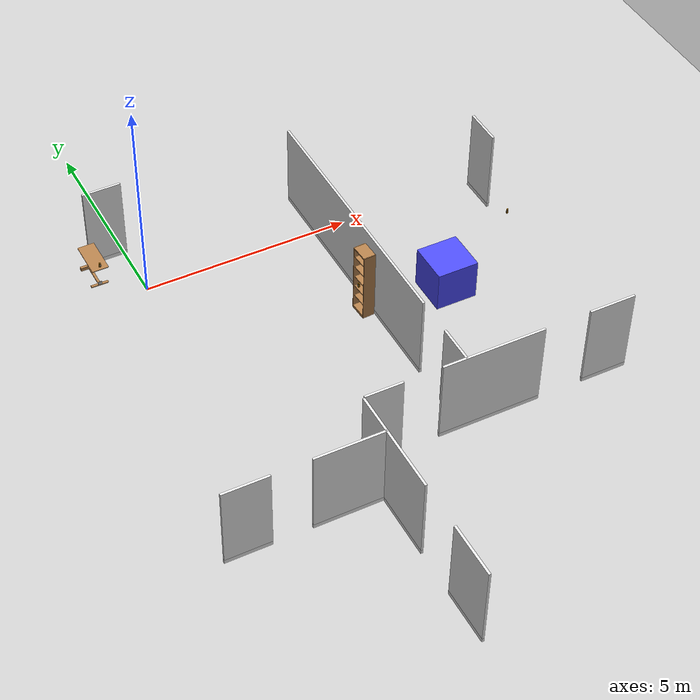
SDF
<sdf version="1.6">
 <world name="default">
  <model name="ground_plane">
   <static>1</static>
   <link name="link">
    <collision name="collision">
     <geometry><plane><normal>0 0 1</normal><size>100 100</size></plane></geometry>
     <surface><friction><ode><mu>100</mu><mu2>50</mu2></ode></friction></surface>
    </collision>
    <visual name="visual">
     <cast_shadows>0</cast_shadows>
     <geometry><plane><normal>0 0 1</normal><size>100 100</size></plane></geometry>
     <material>
      <script><uri>file://media/materials/scripts/gazebo.material</uri><name>Gazebo/Grey</name></script>
     </material>
    </visual>
   </link>
  </model>
  <model name="full_inside_wall">
   <link name="link">
    <inertial>
     <mass>50</mass>
     <inertia><ixx>1</ixx><ixy>0</ixy><ixz>0</ixz><iyy>1</iyy><iyz>0</iyz><izz>1</izz></inertia>
    </inertial>
    <visual name="x05y01_08_bottom_frame">
     <pose>4.075 3.215 0.05 0 -0 0</pose>
     <geometry><box><size>0.055 6.43 0.1</size></box></geometry>
     <material>
      <script><uri>model://base_materials/color/scripts</uri><name>hsr_color/white</name></script>
     </material>
    </visual>
    <collision name="x05y01_08_collision_bottom_frame">
     <pose>4.075 3.215 0.05 0 -0 0</pose>
     <geometry><box><size>0.055 6.43 0.1</size></box></geometry>
    </collision>
    <visual name="x05y01_08_wall">
     <pose>4.075 3.215 1.095 0 -0 0</pose>
     <geometry><box><size>0.055 6.43 1.99</size></box></geometry>
     <material>
      <script>
       <uri>model://base_materials/wall/scripts</uri>
       <uri>model://base_materials/wall/textures</uri>
       <name>wall/white_noise</name>
      </script>
     </material>
    </visual>
    <collision name="x05y01_08_collision_wall">
     <pose>4.075 3.215 1.095 0 -0 0</pose>
     <geometry><box><size>0.055 6.43 1.99</size></box></geometry>
    </collision>
    <visual name="x05y10_bottom_frame">
     <pose>4.075 7.78 0.05 0 -0 0</pose>
     <geometry><box><size>0.055 0.9 0.1</size></box></geometry>
     <material>
      <script><uri>model://base_materials/color/scripts</uri><name>hsr_color/white</name></script>
     </material>
    </visual>
    <collision name="x05y10_collision_bottom_frame">
     <pose>4.075 7.78 0.05 0 -0 0</pose>
     <geometry><box><size>0.055 0.9 0.1</size></box></geometry>
    </collision>
    <visual name="x05y10_wall">
     <pose>4.075 7.78 1.095 0 -0 0</pose>
     <geometry><box><size>0.055 0.9 1.99</size></box></geometry>
     <material>
      <script>
       <uri>model://base_materials/wall/scripts</uri>
       <uri>model://base_materials/wall/textures</uri>
       <name>wall/white_noise</name>
      </script>
     </material>
    </visual>
    <collision name="x05y10_collision_wall">
     <pose>4.075 7.78 1.095 0 -0 0</pose>
     <geometry><box><size>0.055 0.9 1.99</size></box></geometry>
    </collision>
    <visual name="x01_02_y09_bottom_frame">
     <pose>0.55 8.23 0.05 0 -0 1.5708</pose>
     <geometry><box><size>0.055 1.1 0.1</size></box></geometry>
     <material>
      <script><uri>model://base_materials/color/scripts</uri><name>hsr_color/white</name></script>
     </material>
    </visual>
    <collision name="x01_02_y09_collision_bottom_frame">
     <pose>0.55 8.23 0.05 0 -0 1.5708</pose>
     <geometry><box><size>0.055 1.1 0.1</size></box></geometry>
    </collision>
    <visual name="x01_02_y09_wall">
     <pose>0.55 8.23 1.095 0 -0 1.5708</pose>
     <geometry><box><size>0.055 1.1 1.99</size></box></geometry>
     <material>
      <script>
       <uri>model://base_materials/wall/scripts</uri>
       <uri>model://base_materials/wall/textures</uri>
       <name>wall/white_noise</name>
      </script>
     </material>
    </visual>
    <collision name="x01_02_y09_collision_wall">
     <pose>0.55 8.23 1.095 0 -0 1.5708</pose>
     <geometry><box><size>0.055 1.1 1.99</size></box></geometry>
    </collision>
    <visual name="x04_07_y09_bottom_frame">
     <pose>3.42 8.23 0.05 0 -0 1.5708</pose>
     <geometry><box><size>0.055 2.44 0.1</size></box></geometry>
     <material>
      <script><uri>model://base_materials/color/scripts</uri><name>hsr_color/white</name></script>
     </material>
    </visual>
    <collision name="x04_07_y09_collision_bottom_frame">
     <pose>3.42 8.23 0.05 0 -0 1.5708</pose>
     <geometry><box><size>0.055 2.44 0.1</size></box></geometry>
    </collision>
    <visual name="x04_07_y09_wall">
     <pose>3.42 8.23 1.095 0 -0 1.5708</pose>
     <geometry><box><size>0.055 2.44 1.99</size></box></geometry>
     <material>
      <script>
       <uri>model://base_materials/wall/scripts</uri>
       <uri>model://base_materials/wall/textures</uri>
       <name>wall/white_noise</name>
      </script>
     </material>
    </visual>
    <collision name="x04_07_y09_collision_wall">
     <pose>3.42 8.23 1.095 0 -0 1.5708</pose>
     <geometry><box><size>0.055 2.44 1.99</size></box></geometry>
    </collision>
    <visual name="x08y10a_bottom_frame">
     <pose>5.9925 8.23 0.05 0 -0 1.5708</pose>
     <geometry><box><size>0.055 0.9 0.1</size></box></geometry>
     <material>
      <script><uri>model://base_materials/color/scripts</uri><name>hsr_color/white</name></script>
     </material>
    </visual>
    <collision name="x08y10a_collision_bottom_frame">
     <pose>5.9925 8.23 0.05 0 -0 1.5708</pose>
     <geometry><box><size>0.055 0.9 0.1</size></box></geometry>
    </collision>
    <visual name="x08y10a_wall">
     <pose>5.9925 8.23 1.095 0 -0 1.5708</pose>
     <geometry><box><size>0.055 0.9 1.99</size></box></geometry>
     <material>
      <script>
       <uri>model://base_materials/wall/scripts</uri>
       <uri>model://base_materials/wall/textures</uri>
       <name>wall/white_noise</name>
      </script>
     </material>
    </visual>
    <collision name="x08y10a_collision_wall">
     <pose>5.9925 8.23 1.095 0 -0 1.5708</pose>
     <geometry><box><size>0.055 0.9 1.99</size></box></geometry>
    </collision>
    <visual name="x08y10a_bottom_frame">
     <pose>5.9925 8.23 0.05 0 -0 1.5708</pose>
     <geometry><box><size>0.055 0.9 0.1</size></box></geometry>
     <material>
      <script><uri>model://base_materials/color/scripts</uri><name>hsr_color/white</name></script>
     </material>
    </visual>
    <collision name="x08y10a_collision_bottom_frame">
     <pose>5.9925 8.23 0.05 0 -0 1.5708</pose>
     <geometry><box><size>0.055 0.9 0.1</size></box></geometry>
    </collision>
    <visual name="x08y10a_wall">
     <pose>5.9925 8.23 1.095 0 -0 1.5708</pose>
     <geometry><box><size>0.055 0.9 1.99</size></box></geometry>
     <material>
      <script>
       <uri>model://base_materials/wall/scripts</uri>
       <uri>model://base_materials/wall/textures</uri>
       <name>wall/white_noise</name>
      </script>
     </material>
    </visual>
    <collision name="x08y10a_collision_wall">
     <pose>5.9925 8.23 1.095 0 -0 1.5708</pose>
     <geometry><box><size>0.055 0.9 1.99</size></box></geometry>
    </collision>
    <visual name="x08y14_15_bottom_frame">
     <pose>6.47 12.54 0.05 0 -0 0</pose>
     <geometry><box><size>0.055 1.28 0.1</size></box></geometry>
     <material>
      <script><uri>model://base_materials/color/scripts</uri><name>hsr_color/white</name></script>
     </material>
    </visual>
    <collision name="x08y14_15_collision_bottom_frame">
     <pose>6.47 12.54 0.05 0 -0 0</pose>
     <geometry><box><size>0.055 1.28 0.1</size></box></geometry>
    </collision>
    <visual name="x08y14_15_wall">
     <pose>6.47 12.54 1.095 0 -0 0</pose>
     <geometry><box><size>0.055 1.28 1.99</size></box></geometry>
     <material>
      <script>
       <uri>model://base_materials/wall/scripts</uri>
       <uri>model://base_materials/wall/textures</uri>
       <name>wall/white_noise</name>
      </script>
     </material>
    </visual>
    <collision name="x08y14_15_collision_wall">
     <pose>6.47 12.54 1.095 0 -0 0</pose>
     <geometry><box><size>0.055 1.28 1.99</size></box></geometry>
    </collision>
    <visual name="x08y10b_12_bottom_frame">
     <pose>6.47 9.52875 0.05 0 -0 0</pose>
     <geometry><box><size>0.055 2.5425 0.1</size></box></geometry>
     <material>
      <script><uri>model://base_materials/color/scripts</uri><name>hsr_color/white</name></script>
     </material>
    </visual>
    <collision name="x08y10b_12_collision_bottom_frame">
     <pose>6.47 9.52875 0.05 0 -0 0</pose>
     <geometry><box><size>0.055 2.5425 0.1</size></box></geometry>
    </collision>
    <visual name="x08y10b_12_wall">
     <pose>6.47 9.52875 1.095 0 -0 0</pose>
     <geometry><box><size>0.055 2.5425 1.99</size></box></geometry>
     <material>
      <script>
       <uri>model://base_materials/wall/scripts</uri>
       <uri>model://base_materials/wall/textures</uri>
       <name>wall/white_noise</name>
      </script>
     </material>
    </visual>
    <collision name="x08y10b_12_collision_wall">
     <pose>6.47 9.52875 1.095 0 -0 0</pose>
     <geometry><box><size>0.055 2.5425 1.99</size></box></geometry>
    </collision>
    <visual name="x08_09y11b_bottom_frame">
     <pose>7.284 9.23 0.05 0 -0 1.5708</pose>
     <geometry><box><size>0.055 1.632 0.1</size></box></geometry>
     <material>
      <script><uri>model://base_materials/color/scripts</uri><name>hsr_color/white</name></script>
     </material>
    </visual>
    <collision name="x08_09y11b_collision_bottom_frame">
     <pose>7.284 9.23 0.05 0 -0 1.5708</pose>
     <geometry><box><size>0.055 1.632 0.1</size></box></geometry>
    </collision>
    <visual name="x08_09y11b_wall">
     <pose>7.284 9.23 1.095 0 -0 1.5708</pose>
     <geometry><box><size>0.055 1.632 1.99</size></box></geometry>
     <material>
      <script>
       <uri>model://base_materials/wall/scripts</uri>
       <uri>model://base_materials/wall/textures</uri>
       <name>wall/white_noise</name>
      </script>
     </material>
    </visual>
    <collision name="x08_09y11b_collision_wall">
     <pose>7.284 9.23 1.095 0 -0 1.5708</pose>
     <geometry><box><size>0.055 1.632 1.99</size></box></geometry>
    </collision>
    <visual name="x11_12y11_bottom_frame">
     <pose>9.5375 9.23 0.05 0 -0 1.5708</pose>
     <geometry><box><size>0.055 1.075 0.1</size></box></geometry>
     <material>
      <script><uri>model://base_materials/color/scripts</uri><name>hsr_color/white</name></script>
     </material>
    </visual>
    <collision name="x11_12y11_collision_bottom_frame">
     <pose>9.5375 9.23 0.05 0 -0 1.5708</pose>
     <geometry><box><size>0.055 1.075 0.1</size></box></geometry>
    </collision>
    <visual name="x11_12y11_wall">
     <pose>9.5375 9.23 1.095 0 -0 1.5708</pose>
     <geometry><box><size>0.055 1.075 1.99</size></box></geometry>
     <material>
      <script>
       <uri>model://base_materials/wall/scripts</uri>
       <uri>model://base_materials/wall/textures</uri>
       <name>wall/white_noise</name>
      </script>
     </material>
    </visual>
    <collision name="x11_12y11_collision_wall">
     <pose>9.5375 9.23 1.095 0 -0 1.5708</pose>
     <geometry><box><size>0.055 1.075 1.99</size></box></geometry>
    </collision>
    <velocity_decay><linear>0</linear><angular>0</angular></velocity_decay>
   </link>
   <static>1</static>
   <pose>8.33769 1.33864 0 0 -0 3.14132</pose>
  </model>
  <model name="static_box_2">
   <link name="link">
    <inertial>
     <mass>100</mass>
     <inertia>
      <ixx>0.166667</ixx>
      <ixy>0</ixy>
      <ixz>0</ixz>
      <iyy>0.166667</iyy>
      <iyz>0</iyz>
      <izz>0.166667</izz>
     </inertia>
    </inertial>
    <visual name="visual">
     <geometry><box><size>1 1 1</size></box></geometry>
     <material>
      <script><name>Gazebo/Grey</name><uri>file://media/materials/scripts/gazebo.material</uri></script>
      <ambient>0.3 0.3 1 1</ambient>
      <diffuse>0.7 0.7 0.7 1</diffuse>
      <specular>0.01 0.01 0.01 1</specular>
      <emissive>0 0 0 1</emissive>
      <shader type="vertex"><normal_map>__default__</normal_map></shader>
     </material>
    </visual>
    <collision name="collision">
     <geometry><box><size>1 1 1</size></box></geometry>
     <surface>
      <friction>
       <ode><mu>1</mu><mu2>1</mu2><fdir1>0 0 0</fdir1><slip1>0</slip1><slip2>0</slip2></ode>
       <torsional>
        <coefficient>1</coefficient>
        <patch_radius>0</patch_radius>
        <surface_radius>0</surface_radius>
        <use_patch_radius>1</use_patch_radius>
        <ode><slip>0</slip></ode>
       </torsional>
      </friction>
      <bounce><restitution_coefficient>0</restitution_coefficient><threshold>1e+06</threshold></bounce>
      <contact>
       <collide_without_contact>0</collide_without_contact>
       <collide_without_contact_bitmask>1</collide_without_contact_bitmask>
       <collide_bitmask>1</collide_bitmask>
       <ode>
        <soft_cfm>0</soft_cfm>
        <soft_erp>0.2</soft_erp>
        <kp>1e+13</kp>
        <kd>1</kd>
        <max_vel>0.01</max_vel>
        <min_depth>0</min_depth>
       </ode>
       <bullet>
        <split_impulse>1</split_impulse>
        <split_impulse_penetration_threshold>-0.01</split_impulse_penetration_threshold>
        <soft_cfm>0</soft_cfm>
        <soft_erp>0.2</soft_erp>
        <kp>1e+13</kp>
        <kd>1</kd>
       </bullet>
      </contact>
     </surface>
    </collision>
   </link>
   <static>0</static>
   <pose>6.05292 -3.061 0.499998 1e-06 1.4e-05 0.000791</pose>
  </model>
  <model name="full_wall_55_920_2090">
   <link name="link">
    <inertial>
     <mass>50</mass>
     <inertia><ixx>1</ixx><ixy>0</ixy><ixz>0</ixz><iyy>1</iyy><iyz>0</iyz><izz>1</izz></inertia>
    </inertial>
    <visual name="bottom_frame">
     <pose>0 0 0.05 0 -0 0</pose>
     <geometry><box><size>0.055 0.92 0.1</size></box></geometry>
     <material>
      <script><uri>model://base_materials/color/scripts</uri><name>hsr_color/white</name></script>
     </material>
    </visual>
    <collision name="collision_bottom_frame">
     <pose>0 0 0.05 0 -0 0</pose>
     <geometry><box><size>0.055 0.92 0.1</size></box></geometry>
    </collision>
    <visual name="wall">
     <pose>0 0 1.095 0 -0 0</pose>
     <geometry><box><size>0.055 0.92 1.99</size></box></geometry>
     <material>
      <script>
       <uri>model://base_materials/wall/scripts</uri>
       <uri>model://base_materials/wall/textures</uri>
       <name>wall/white_noise</name>
      </script>
     </material>
    </visual>
    <collision name="collision_wall">
     <pose>0 0 1.095 0 -0 0</pose>
     <geometry><box><size>0.055 0.92 1.99</size></box></geometry>
    </collision>
    <velocity_decay><linear>0</linear><angular>0</angular></velocity_decay>
   </link>
   <static>1</static>
   <pose>8.36232 -0.582065 0 0 -0 0</pose>
  </model>
  <model name="full_wall_55_920_2090_0">
   <link name="link">
    <inertial>
     <mass>50</mass>
     <inertia><ixx>1</ixx><ixy>0</ixy><ixz>0</ixz><iyy>1</iyy><iyz>0</iyz><izz>1</izz></inertia>
    </inertial>
    <visual name="bottom_frame">
     <pose>0 0 0.05 0 -0 0</pose>
     <geometry><box><size>0.055 0.92 0.1</size></box></geometry>
     <material>
      <script><uri>model://base_materials/color/scripts</uri><name>hsr_color/white</name></script>
     </material>
    </visual>
    <collision name="collision_bottom_frame">
     <pose>0 0 0.05 0 -0 0</pose>
     <geometry><box><size>0.055 0.92 0.1</size></box></geometry>
    </collision>
    <visual name="wall">
     <pose>0 0 1.095 0 -0 0</pose>
     <geometry><box><size>0.055 0.92 1.99</size></box></geometry>
     <material>
      <script>
       <uri>model://base_materials/wall/scripts</uri>
       <uri>model://base_materials/wall/textures</uri>
       <name>wall/white_noise</name>
      </script>
     </material>
    </visual>
    <collision name="collision_wall">
     <pose>0 0 1.095 0 -0 0</pose>
     <geometry><box><size>0.055 0.92 1.99</size></box></geometry>
    </collision>
    <velocity_decay><linear>0</linear><angular>0</angular></velocity_decay>
   </link>
   <static>1</static>
   <pose>-0.391738 1.37269 0 0 -0 1.5726</pose>
  </model>
  <model name="bottle">
   <link name="link">
    <inertial>
     <mass>0.05</mass>
     <inertia><ixx>0.00058</ixx><ixy>0</ixy><ixz>0</ixz><iyy>0.00058</iyy><iyz>0</iyz><izz>0.00016</izz></inertia>
    </inertial>
    <visual name="top">
     <pose>0 0 0.0555 0 -0 0</pose>
     <geometry><cylinder><radius>0.019</radius><length>0.016</length></cylinder></geometry>
     <material>
      <ambient>1 0.647 0 1</ambient>
      <diffuse>0.5 0.3235 0 1</diffuse>
      <specular>0.1 0.1 0.1 1</specular>
      <emissive>0 0 0 0</emissive>
     </material>
    </visual>
    <collision name="collision_top">
     <pose>0 0 0.0555 0 -0 0</pose>
     <geometry><cylinder><radius>0.019</radius><length>0.016</length></cylinder></geometry>
     <surface>
      <bounce><restitution_coefficient>0.2</restitution_coefficient><threshold>0</threshold></bounce>
      <contact><ode><kp>10000</kp><max_vel>10</max_vel></ode></contact>
     </surface>
    </collision>
    <visual name="bottom">
     <geometry><cylinder><radius>0.0245</radius><length>0.095</length></cylinder></geometry>
     <material>
      <ambient>1 0.7 0.3 1</ambient>
      <diffuse>0.5 0.3235 0 1</diffuse>
      <specular>0.1 0.1 0.1 1</specular>
      <emissive>0 0 0 0</emissive>
     </material>
    </visual>
    <collision name="collision_bottom">
     <geometry><cylinder><radius>0.0245</radius><length>0.095</length></cylinder></geometry>
     <surface>
      <bounce><restitution_coefficient>0.2</restitution_coefficient><threshold>0</threshold></bounce>
      <contact><ode><kp>100000</kp><max_vel>10</max_vel></ode></contact>
     </surface>
    </collision>
    <velocity_decay><linear>0</linear><angular>0</angular></velocity_decay>
    <visual name="marker_4000">
     <pose>0.0245 0 0 0 1.57 3.141</pose>
     <geometry><box><size>0.045 0.045 0.0001</size></box></geometry>
     <material>
      <script>
       <uri>model://marker/4000/scripts</uri>
       <uri>model://marker/4000/textures</uri>
       <name>Marker/4000</name>
      </script>
     </material>
    </visual>
   </link>
   <static>0</static>
   <pose>-0.88884 0.529823 0.6825 3e-06 -9e-06 -1.24485</pose>
  </model>
  <model name="bed_table">
   <link name="link">
    <inertial>
     <pose>0 0.449 0.001 0 -0 0</pose>
     <mass>10</mass>
     <inertia><ixx>1</ixx><ixy>0</ixy><ixz>0</ixz><iyy>1</iyy><iyz>0</iyz><izz>1</izz></inertia>
    </inertial>
    <visual name="top_board">
     <pose>0 0.449 0.625 0 -0 0</pose>
     <geometry><box><size>0.398 0.898 0.02</size></box></geometry>
     <material>
      <script><uri>model://base_materials/wood/scripts/wood.material</uri><name>base_materials/wood</name></script>
     </material>
    </visual>
    <collision name="collision_top_board">
     <pose>0 0.449 0.625 0 -0 0</pose>
     <geometry><box><size>0.398 0.898 0.02</size></box></geometry>
    </collision>
    <visual name="right_pole">
     <pose>0 0.817 0.3515 0 -0 0</pose>
     <geometry><box><size>0.072 0.094 0.527</size></box></geometry>
     <material>
      <script><uri>model://base_materials/color/scripts</uri><name>hsr_color/grey</name></script>
     </material>
    </visual>
    <collision name="collision_right_pole">
     <pose>0 0.817 0.3515 0 -0 0</pose>
     <geometry><box><size>0.072 0.094 0.527</size></box></geometry>
    </collision>
    <visual name="right_bottom_pole">
     <pose>0 0.8225 0.044 0 -0 0</pose>
     <geometry><box><size>0.42 0.063 0.088</size></box></geometry>
     <material>
      <script><uri>model://base_materials/wood/scripts/wood.material</uri><name>base_materials/wood</name></script>
     </material>
    </visual>
    <collision name="collision_right_bottom_pole">
     <pose>0 0.8225 0.044 0 -0 0</pose>
     <geometry><box><size>0.42 0.063 0.088</size></box></geometry>
    </collision>
    <visual name="bottom_center_pole">
     <pose>0 0.502 0.03 0 -0 0</pose>
     <geometry><box><size>0.06 0.578 0.03</size></box></geometry>
     <material>
      <script><uri>model://base_materials/wood/scripts/wood.material</uri><name>base_materials/wood</name></script>
     </material>
    </visual>
    <collision name="collision_bottom_center_pole">
     <pose>0 0.502 0.03 0 -0 0</pose>
     <geometry><box><size>0.06 0.578 0.03</size></box></geometry>
    </collision>
    <visual name="left_bottom_pole">
     <pose>0 0.18 0.0325 0 -0 0</pose>
     <geometry><box><size>0.418 0.066 0.025</size></box></geometry>
     <material>
      <script><uri>model://base_materials/wood/scripts/wood.material</uri><name>base_materials/wood</name></script>
     </material>
    </visual>
    <collision name="collision_left_bottom_pole">
     <pose>0 0.18 0.0325 0 -0 0</pose>
     <geometry><box><size>0.418 0.066 0.025</size></box></geometry>
    </collision>
    <visual name="marker_0010">
     <pose>0 0.14 0.093 0 -0 0</pose>
     <geometry><box><size>0.09 0.001 0.09</size></box></geometry>
     <material>
      <script>
       <uri>model://bed_table/marker/0010/scripts</uri>
       <uri>model://bed_table/marker/0010/textures</uri>
       <name>Marker/0010</name>
      </script>
     </material>
    </visual>
    <collision name="collision_marker_0010">
     <pose>0 0.14 0.093 0 -0 0</pose>
     <geometry><box><size>0.09 0.001 0.09</size></box></geometry>
    </collision>
    <visual name="marker_0010_back_plate">
     <pose>0 0.146 0.093 0 -0 0</pose>
     <geometry><box><size>0.09 0.01 0.09</size></box></geometry>
     <material>
      <script><uri>model://base_materials/wood/scripts/wood.material</uri><name>base_materials/wood</name></script>
     </material>
    </visual>
    <collision name="collision_marker_0010_back_plate">
     <pose>0 0.146 0.093 0 -0 0</pose>
     <geometry><box><size>0.09 0.01 0.09</size></box></geometry>
    </collision>
    <velocity_decay><linear>0</linear><angular>0</angular></velocity_decay>
   </link>
   <static>1</static>
   <pose>-0.913365 0.438838 0 0 -0 0</pose>
  </model>
  <model name="high_shelf">
   <link name="link">
    <inertial>
     <mass>5</mass>
     <inertia><ixx>1</ixx><ixy>0</ixy><ixz>0</ixz><iyy>1</iyy><iyz>0</iyz><izz>1</izz></inertia>
    </inertial>
    <visual name="left_board">
     <pose>-0.1475 0.009 0.898 0 -0 0</pose>
     <geometry><box><size>0.295 0.018 1.796</size></box></geometry>
     <material>
      <script>
       <uri>model://base_materials/wood/scripts</uri>
       <uri>model://base_materials/wood/textures</uri>
       <name>base_materials/light_wood</name>
      </script>
     </material>
    </visual>
    <collision name="collision_left_board">
     <pose>-0.1475 0.009 0.898 0 -0 0</pose>
     <geometry><box><size>0.295 0.018 1.796</size></box></geometry>
    </collision>
    <visual name="right_board">
     <pose>-0.1475 0.441 0.898 0 -0 0</pose>
     <geometry><box><size>0.295 0.018 1.796</size></box></geometry>
     <material>
      <script>
       <uri>model://base_materials/wood/scripts</uri>
       <uri>model://base_materials/wood/textures</uri>
       <name>base_materials/light_wood</name>
      </script>
     </material>
    </visual>
    <collision name="collision_right_board">
     <pose>-0.1475 0.441 0.898 0 -0 0</pose>
     <geometry><box><size>0.295 0.018 1.796</size></box></geometry>
    </collision>
    <visual name="top_board">
     <pose>-0.1475 0.225 1.7825 0 -0 0</pose>
     <geometry><box><size>0.295 0.414 0.035</size></box></geometry>
     <material>
      <script>
       <uri>model://base_materials/wood/scripts</uri>
       <uri>model://base_materials/wood/textures</uri>
       <name>base_materials/light_wood</name>
      </script>
     </material>
    </visual>
    <collision name="collision_top_board">
     <pose>-0.1475 0.225 1.7825 0 -0 0</pose>
     <geometry><box><size>0.295 0.414 0.035</size></box></geometry>
    </collision>
    <visual name="1st_shelf">
     <pose>-0.162 0.225 1.51 0 -0 0</pose>
     <geometry><box><size>0.266 0.414 0.018</size></box></geometry>
     <material>
      <script>
       <uri>model://base_materials/wood/scripts</uri>
       <uri>model://base_materials/wood/textures</uri>
       <name>base_materials/light_wood</name>
      </script>
     </material>
    </visual>
    <collision name="collision_1st_shelf">
     <pose>-0.162 0.225 1.51 0 -0 0</pose>
     <geometry><box><size>0.266 0.414 0.018</size></box></geometry>
    </collision>
    <visual name="2nd_shelf">
     <pose>-0.162 0.225 1.22 0 -0 0</pose>
     <geometry><box><size>0.266 0.414 0.018</size></box></geometry>
     <material>
      <script>
       <uri>model://base_materials/wood/scripts</uri>
       <uri>model://base_materials/wood/textures</uri>
       <name>base_materials/light_wood</name>
      </script>
     </material>
    </visual>
    <collision name="collision_2nd_shelf">
     <pose>-0.162 0.225 1.22 0 -0 0</pose>
     <geometry><box><size>0.266 0.414 0.018</size></box></geometry>
    </collision>
    <visual name="3rd_shelf">
     <pose>-0.162 0.225 0.93 0 -0 0</pose>
     <geometry><box><size>0.266 0.414 0.018</size></box></geometry>
     <material>
      <script>
       <uri>model://base_materials/wood/scripts</uri>
       <uri>model://base_materials/wood/textures</uri>
       <name>base_materials/light_wood</name>
      </script>
     </material>
    </visual>
    <collision name="collision_3rd_shelf">
     <pose>-0.162 0.225 0.93 0 -0 0</pose>
     <geometry><box><size>0.266 0.414 0.018</size></box></geometry>
    </collision>
    <visual name="4th_shelf">
     <pose>-0.162 0.225 0.65 0 -0 0</pose>
     <geometry><box><size>0.266 0.414 0.018</size></box></geometry>
     <material>
      <script>
       <uri>model://base_materials/wood/scripts</uri>
       <uri>model://base_materials/wood/textures</uri>
       <name>base_materials/light_wood</name>
      </script>
     </material>
    </visual>
    <collision name="collision_4th_shelf">
     <pose>-0.162 0.225 0.65 0 -0 0</pose>
     <geometry><box><size>0.266 0.414 0.018</size></box></geometry>
    </collision>
    <visual name="5th_shelf">
     <pose>-0.162 0.225 0.36 0 -0 0</pose>
     <geometry><box><size>0.266 0.414 0.018</size></box></geometry>
     <material>
      <script>
       <uri>model://base_materials/wood/scripts</uri>
       <uri>model://base_materials/wood/textures</uri>
       <name>base_materials/light_wood</name>
      </script>
     </material>
    </visual>
    <collision name="collision_5th_shelf">
     <pose>-0.162 0.225 0.36 0 -0 0</pose>
     <geometry><box><size>0.266 0.414 0.018</size></box></geometry>
    </collision>
    <visual name="bottom_board">
     <pose>-0.1475 0.225 0.035 0 -0 0</pose>
     <geometry><box><size>0.295 0.414 0.07</size></box></geometry>
     <material>
      <script>
       <uri>model://base_materials/wood/scripts</uri>
       <uri>model://base_materials/wood/textures</uri>
       <name>base_materials/light_wood</name>
      </script>
     </material>
    </visual>
    <collision name="collision_bottom_board">
     <pose>-0.1475 0.225 0.035 0 -0 0</pose>
     <geometry><box><size>0.295 0.414 0.07</size></box></geometry>
    </collision>
    <visual name="back_board">
     <pose>-0.286 0.225 0.898 0 -0 0</pose>
     <geometry><box><size>0.018 0.414 1.796</size></box></geometry>
     <material>
      <script>
       <uri>model://base_materials/wood/scripts</uri>
       <uri>model://base_materials/wood/textures</uri>
       <name>base_materials/light_wood</name>
      </script>
     </material>
    </visual>
    <collision name="collision_back_board">
     <pose>-0.286 0.225 0.898 0 -0 0</pose>
     <geometry><box><size>0.018 0.414 1.796</size></box></geometry>
    </collision>
    <velocity_decay><linear>0</linear><angular>0</angular></velocity_decay>
   </link>
   <static>1</static>
   <pose>3.90304 -2.61551 0 0 0 -3.08817</pose>
  </model>
  <model name="bottle_clone">
   <link name="link">
    <inertial>
     <mass>0.05</mass>
     <inertia><ixx>0.00058</ixx><ixy>0</ixy><ixz>0</ixz><iyy>0.00058</iyy><iyz>0</iyz><izz>0.00016</izz></inertia>
    </inertial>
    <visual name="top">
     <pose>0 0 0.0555 0 -0 0</pose>
     <geometry><cylinder><radius>0.019</radius><length>0.016</length></cylinder></geometry>
     <material>
      <ambient>1 0.647 0 1</ambient>
      <diffuse>0.5 0.3235 0 1</diffuse>
      <specular>0.1 0.1 0.1 1</specular>
      <emissive>0 0 0 0</emissive>
     </material>
    </visual>
    <collision name="collision_top">
     <pose>0 0 0.0555 0 -0 0</pose>
     <geometry><cylinder><radius>0.019</radius><length>0.016</length></cylinder></geometry>
     <surface>
      <bounce><restitution_coefficient>0.2</restitution_coefficient><threshold>0</threshold></bounce>
      <contact><ode><kp>10000</kp><max_vel>10</max_vel></ode></contact>
     </surface>
    </collision>
    <visual name="bottom">
     <geometry><cylinder><radius>0.0245</radius><length>0.095</length></cylinder></geometry>
     <material>
      <ambient>1 0.7 0.3 1</ambient>
      <diffuse>0.5 0.3235 0 1</diffuse>
      <specular>0.1 0.1 0.1 1</specular>
      <emissive>0 0 0 0</emissive>
     </material>
    </visual>
    <collision name="collision_bottom">
     <geometry><cylinder><radius>0.0245</radius><length>0.095</length></cylinder></geometry>
     <surface>
      <bounce><restitution_coefficient>0.2</restitution_coefficient><threshold>0</threshold></bounce>
      <contact><ode><kp>100000</kp><max_vel>10</max_vel></ode></contact>
     </surface>
    </collision>
    <velocity_decay><linear>0</linear><angular>0</angular></velocity_decay>
    <visual name="marker_4000">
     <pose>0.0245 0 0 0 1.57 3.141</pose>
     <geometry><box><size>0.045 0.045 0.0001</size></box></geometry>
     <material>
      <script>
       <uri>model://marker/4000/scripts</uri>
       <uri>model://marker/4000/textures</uri>
       <name>Marker/4000</name>
      </script>
     </material>
    </visual>
   </link>
   <static>0</static>
   <pose>7.97476 -2.44305 1.0975 9e-06 -4e-06 -3.07182</pose>
  </model>
  <model name="bottle_clone_3">
   <link name="link">
    <inertial>
     <mass>0.05</mass>
     <inertia><ixx>0.00058</ixx><ixy>0</ixy><ixz>0</ixz><iyy>0.00058</iyy><iyz>0</iyz><izz>0.00016</izz></inertia>
    </inertial>
    <visual name="top">
     <pose>0 0 0.0555 0 -0 0</pose>
     <geometry><cylinder><radius>0.019</radius><length>0.016</length></cylinder></geometry>
     <material>
      <ambient>1 0.647 0 1</ambient>
      <diffuse>0.5 0.3235 0 1</diffuse>
      <specular>0.1 0.1 0.1 1</specular>
      <emissive>0 0 0 0</emissive>
     </material>
    </visual>
    <collision name="collision_top">
     <pose>0 0 0.0555 0 -0 0</pose>
     <geometry><cylinder><radius>0.019</radius><length>0.016</length></cylinder></geometry>
     <surface>
      <bounce><restitution_coefficient>0.2</restitution_coefficient><threshold>0</threshold></bounce>
      <contact><ode><kp>10000</kp><max_vel>10</max_vel></ode></contact>
     </surface>
    </collision>
    <visual name="bottom">
     <geometry><cylinder><radius>0.0245</radius><length>0.095</length></cylinder></geometry>
     <material>
      <ambient>1 0.7 0.3 1</ambient>
      <diffuse>0.5 0.3235 0 1</diffuse>
      <specular>0.1 0.1 0.1 1</specular>
      <emissive>0 0 0 0</emissive>
     </material>
    </visual>
    <collision name="collision_bottom">
     <geometry><cylinder><radius>0.0245</radius><length>0.095</length></cylinder></geometry>
     <surface>
      <bounce><restitution_coefficient>0.2</restitution_coefficient><threshold>0</threshold></bounce>
      <contact><ode><kp>100000</kp><max_vel>10</max_vel></ode></contact>
     </surface>
    </collision>
    <velocity_decay><linear>0</linear><angular>0</angular></velocity_decay>
    <visual name="marker_4000">
     <pose>0.0245 0 0 0 1.57 3.141</pose>
     <geometry><box><size>0.045 0.045 0.0001</size></box></geometry>
     <material>
      <script>
       <uri>model://marker/4000/scripts</uri>
       <uri>model://marker/4000/textures</uri>
       <name>Marker/4000</name>
      </script>
     </material>
    </visual>
   </link>
   <static>0</static>
   <pose>3.99617 -2.71837 0.7065 5e-06 -5e-06 -3.06545</pose>
  </model>
 </world>
</sdf>
